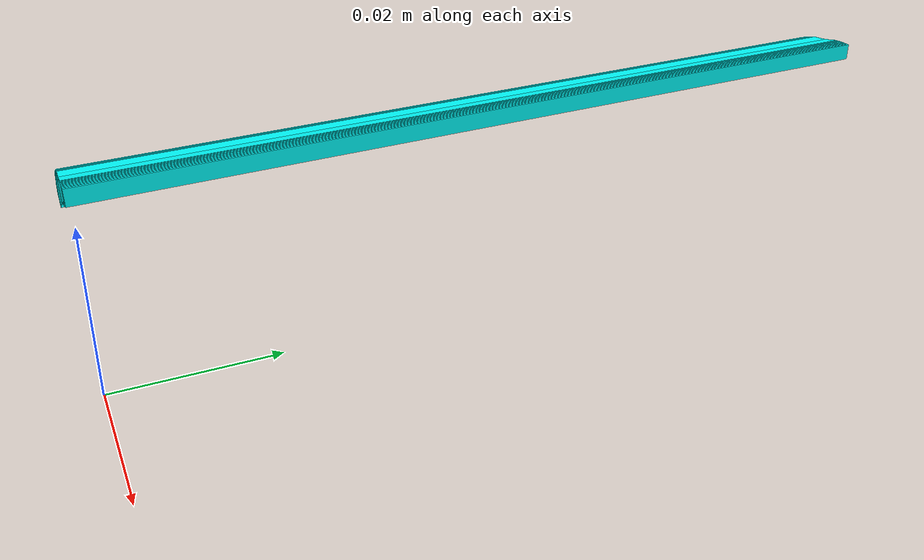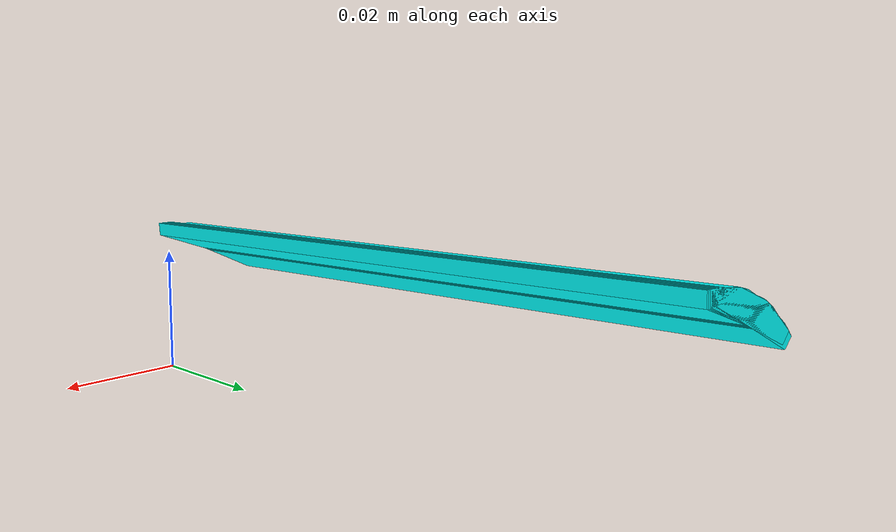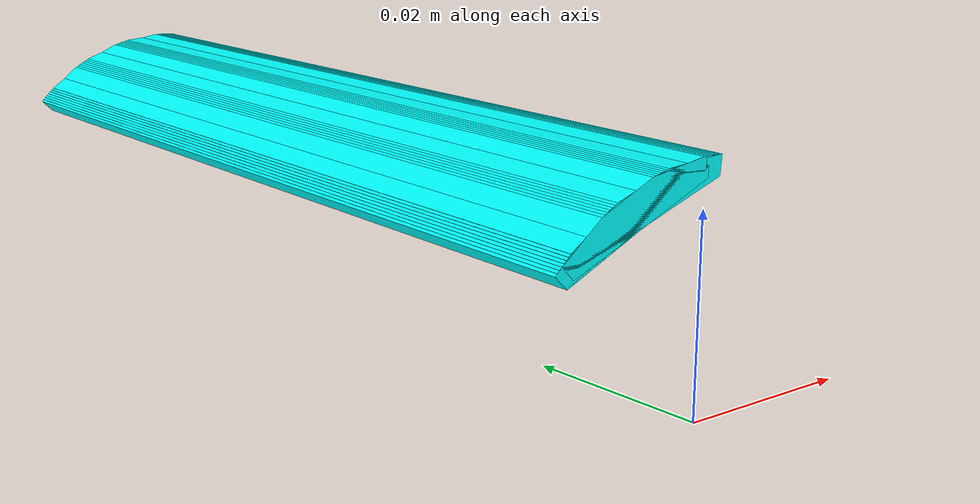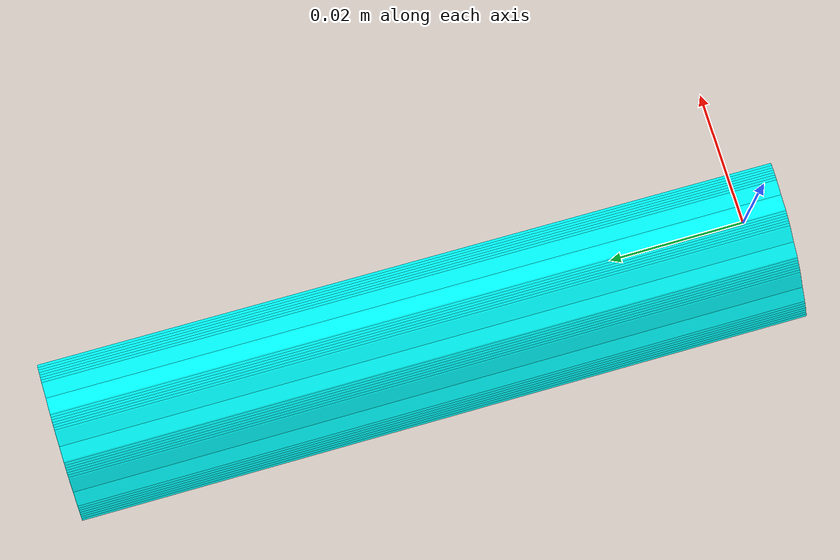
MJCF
<mujoco model="cup2">
    <asset>
      <mesh name="cup2_mesh" file="assets/cup.stl" scale="1 2 1" />
    </asset>

      <worldbody>
        <body name="cup2">
          <geom type="mesh" mesh="cup2_mesh" pos="0 0 0" euler='1.57 -2.35619 0' rgba="0.0 1.0 1.0 1.0"/>
          <geom type="mesh" mesh="cup2_mesh" pos="0 0 0" euler='1.57 -1.57079 0' rgba="0.0 1.0 1.0 1.0"/>
          <geom type="mesh" mesh="cup2_mesh" pos="0 0 0" euler='1.57 -0.78539 0' rgba="0.0 1.0 1.0 1.0"/>
          <geom type="mesh" mesh="cup2_mesh" pos="0 0 0" euler='1.57 0 0' rgba="0.0 1.0 1.0 1.0"/>
          <geom type="mesh" mesh="cup2_mesh" pos="0 0 0" euler='1.57 0.78539 0' rgba="0.0 1.0 1.0 1.0"/>
          <geom type="mesh" mesh="cup2_mesh" pos="0 0 0" euler='1.57 1.57079 0' rgba="0.0 1.0 1.0 1.0"/>
          <geom type="mesh" mesh="cup2_mesh" pos="0 0 0" euler='1.57 2.35619 0' rgba="0.0 1.0 1.0 1.0"/>
          <geom type="mesh" mesh="cup2_mesh" pos="0 0 0" euler='1.57 3.14159 0' rgba="0.0 1.0 1.0 1.0"/>
          <joint name="cup2_joint" type="free"/>
        </body>
      </worldbody>

  </mujoco>
